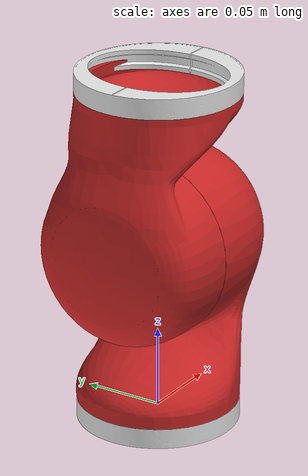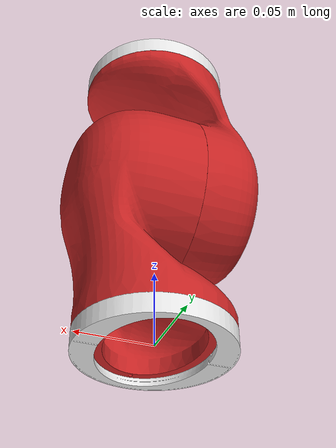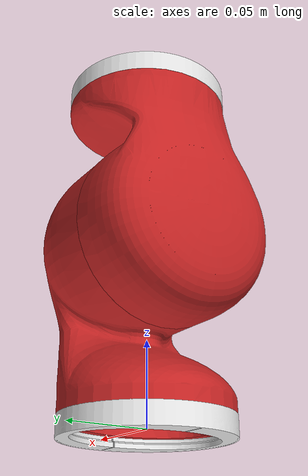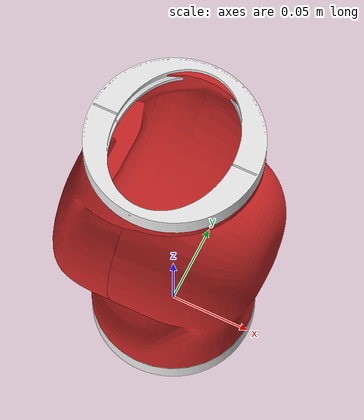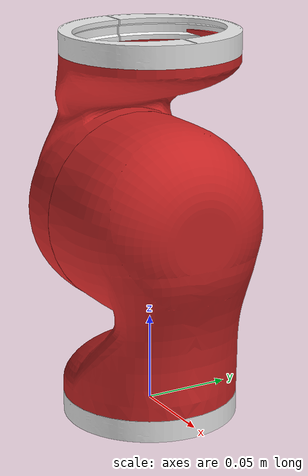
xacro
<?xml version="1.0"?>
<robot xmlns:xacro="http://www.ros.org/wiki/xacro" name="T_module">

<!-- materials for visualization -->
  <xacro:include filename="$(find mr_description)/urdf/materials.urdf.xacro" />

  <!-- T Module -->
  <xacro:include filename="$(find mr_description)/urdf/T_module_4th/T_module_4th.urdf.xacro" />

<!-- Now we can start using the macros included above to define the actual youbot -->

  <!-- foot for module arm-->
  <link name="base_link"/>

  <xacro:T_module_4th name="T" parent="base_link">
    <origin xyz="0 0 0" rpy="0 0 0" />
  </xacro:T_module_4th>

</robot>

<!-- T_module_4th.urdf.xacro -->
<robot xmlns:xacro="http://www.ros.org/wiki/xacro">
<xacro:property name="pi" value="3.1415926535897931" />
<!--definition of default_inertial -->
<xacro:macro name="T_module_4th" params="parent name *origin">

<!-- joint between base_link and Lockring_Link -->
  <joint name="${name}_joint_0" type="fixed" >
    <insert_block name="origin" />
    <parent link="${parent}" />
    <child link="${name}_Lr_Link_0" />
  </joint>

<!--the Lockring_Link in T module-->
  <link name="${name}_Lr_Link_0">
    <inertial>
      <origin xyz="-0.0062199 -4.712E-05 0.11151" rpy="0 0 0" />
      <mass   value="0.5" />
      <inertia  ixx="0.0043213"
        ixy="-5.1881E-07"
        ixz="0.00020387"
        iyy="0.0045007"
        iyz="4.834E-07"
        izz="0.0020727" />
      </inertial>
    <visual>
      <origin xyz="0 0 0" rpy="0 0 0" />
      <geometry>
        <mesh filename="package://mr_description/meshes/VT_InLink_4th.STL" />
      </geometry>
      <material name="White"/>
    </visual>
  </link>

<!-- joint between Lockring_Link and TModule_InLink -->
    <joint name="${name}_Lr_Joint_1" type="fixed">
      <origin xyz="0 0 0.1105" rpy="1.5708 0 0" />
      <parent link="${name}_Lr_Link_0" />
      <child  link="${name}_InLink_1" />
      <axis   xyz="0 0 0" />
      <limit  lower="0" upper="0"  effort="0"   velocity="0" />
    </joint>

<!--the TModule_InLink in T module-->
  <link name="${name}_InLink_1">
    <inertial>
      <origin xyz="0.014606 -0.023405 6.7266E-05" rpy="0 0 0" />
      <mass   value="1.2" />
      <inertia   ixx="0.0016912"
        ixy="-8.2481E-05"
        ixz="-1.3704E-06"
        iyy="0.00075608"
        iyz="-5.6454E-07"
        izz="0.0014025" />
    </inertial>
    <visual>
      <origin   xyz="0 0 0"  rpy="0 0 0" />
      <geometry>
        <mesh   filename="package://mr_description/meshes/T_InLink_4th.STL" />
      </geometry>
      <material name="Red"/>
    </visual>
    <collision>
	<origin   xyz="0 0 0"  rpy="0 0 0" />
      <geometry>
	<cylinder radius="0.05" length="0.07" />
      </geometry>
    </collision>
  </link>
  <!--the IModule_InLink Gazebo tag-->
  <gazebo reference="${name}_InLink_1">
    <material>Gazebo/Red</material>
  </gazebo>

<!-- joint between TModule_InLink and TModule_OutLink -->
  <joint  name="${name}_Joint"  type="revolute">
    <origin  xyz="-0.0145 0 0"  rpy="0 0 0" />
    <parent  link="${name}_InLink_1" />
    <child   link="${name}_OutLink_2" />
    <axis   xyz="-1 0 0" />
    <limit  lower="-2.07" upper="2.07"  effort="0"  velocity="0" />
    <dynamics damping="0.7"/>
  </joint>

  <!--    test reduction ratio-->
  <transmission name="${name}_trans">
    <type>transmission_interface/SimpleTransmission</type>
    <joint name="${name}_Joint" >
      <hardwareInterface>PositionJointInterface</hardwareInterface>
      <hardwareInterface>VelocityJointInterface</hardwareInterface>
      <hardwareInterface>EffortJointInterface</hardwareInterface>
    </joint>
    <actuator name="${name}_motor">
      <mechanicalReduction>480</mechanicalReduction>
      <hardwareInterface>PositionJointInterface</hardwareInterface>
      <hardwareInterface>VelocityJointInterface</hardwareInterface>
      <hardwareInterface>EffortJointInterface</hardwareInterface>
    </actuator>
  </transmission>

<!--the TModule_OutLink in T module-->
  <link  name="${name}_OutLink_2">
    <inertial>
      <origin xyz="-0.017304 0.030846 2.9874E-05" rpy="0 0 0" />
      <mass  value="1" />
      <inertia   ixx="0.0012074"
        ixy="-0.00030836"
        ixz="-2.8267E-07"
        iyy="0.00068337"
        iyz="-3.7727E-07"
        izz="0.0011522" />
    </inertial>
    <visual>
      <origin  xyz="0 0 0"  rpy="0 0 0" />
      <geometry>
        <mesh  filename="package://mr_description/meshes/T_OutLink_4th.STL" />
      </geometry>
      <material  name="Red"/>
    </visual>
    <collision>
          <origin  xyz="0 -0.025 0" rpy="${pi*0.5} 0 0" />
      <geometry>
      	<cylinder radius="0.05" length="0.12" />
      </geometry>
    </collision>
  </link>
  <!--the IModule_InLink Gazebo tag-->
  <gazebo reference="${name}_OutLink_2">
    <material>Gazebo/Red</material>
  </gazebo>

<!-- joint between TModule_OutLink and Lockring_Link -->
    <joint name="${name}_Lr_Joint_3" type="fixed">
      <origin  xyz="0.015 0.0987 0"  rpy="-1.5708 0 0" />
      <parent link="${name}_OutLink_2" />
      <child  link="${name}_Link" />
      <axis   xyz="0 0 0" />
      <limit  lower="0" upper="0"  effort="0"   velocity="0" />
    </joint>

<!--the Lockring_Link in T module-->
  <link name="${name}_Link">
    <inertial>
      <origin xyz="-0.0067199 -4.712E-05 -0.097693" rpy="0 0 0" />
      <mass value="0.5" />
      <inertia ixx="0.0043213"
        ixy="-5.1881E-07"
        ixz="0.00020387"
        iyy="0.0045007"
        iyz="4.834E-07"
        izz="0.0020727" />
    </inertial>
    <visual>
      <origin  xyz="0 0 0"  rpy="0 0 0" />
      <geometry>
        <mesh  filename="package://mr_description/meshes/VT_OutLink_4th.STL" />
      </geometry>
      <material name="White"/>
    </visual>
  </link>

</xacro:macro>
</robot>
